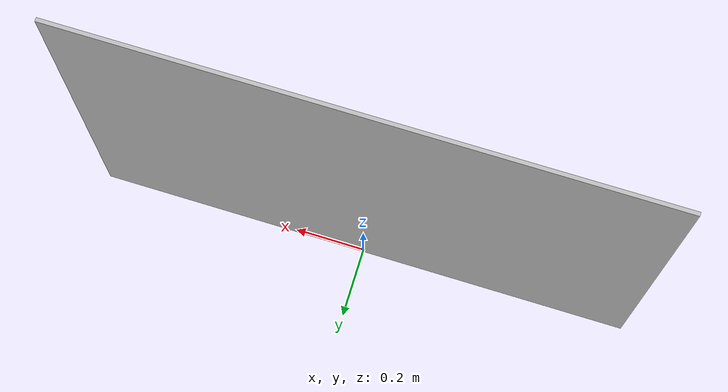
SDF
<?xml version='1.0'?>
<sdf version="1.5">
  <model name="wall_1525">
    <static>true</static>
    <link name="link">
      <pose>0 0 0.65 0 0 0</pose>
      <inertial>
        <mass>1.0</mass>
        <inertia>
          <ixx>0.0</ixx>
          <ixy>0.0</ixy>
          <ixz>0.0</ixz>
          <iyy>0.0</iyy>
          <iyz>0.0</iyz>
          <izz>0.0</izz>
        </inertia>
      </inertial>
      <collision name="collision">
        <geometry>
          <box>
            <size>1.525 0.01 1.30</size>
          </box>
        </geometry>
      </collision>
      <visual name="visual">
        <geometry>
          <box>
            <size>1.525 0.01 1.30</size>
          </box>
        </geometry>
        <material>
          <script>
            <uri>model://wall_1525/materials/scripts</uri>
            <uri>model://wall_1525/materials/textures</uri>
            <name>wall</name>
          </script>
        </material>
      </visual>
    </link>
  </model>
</sdf>
